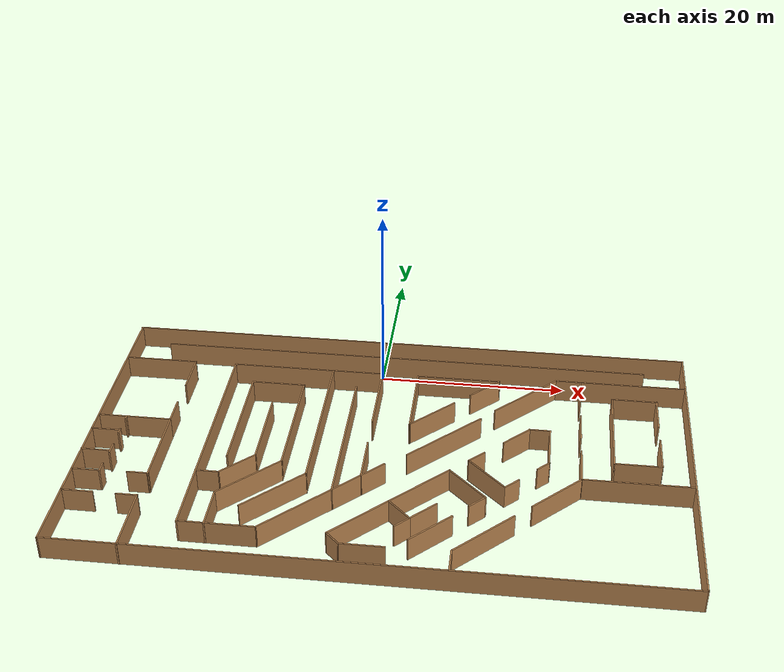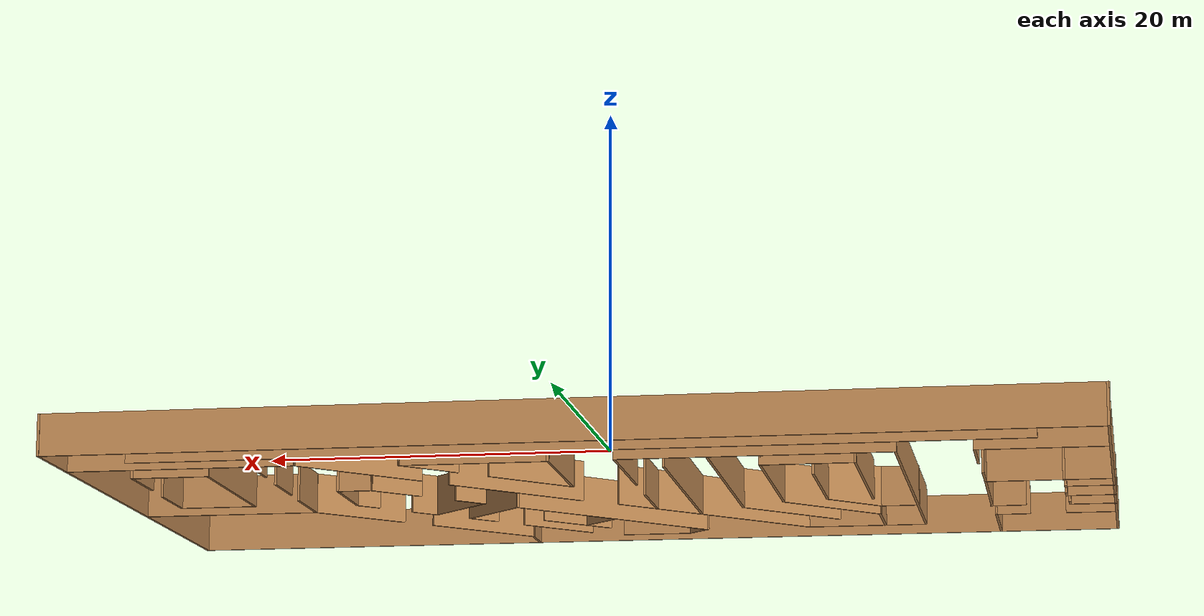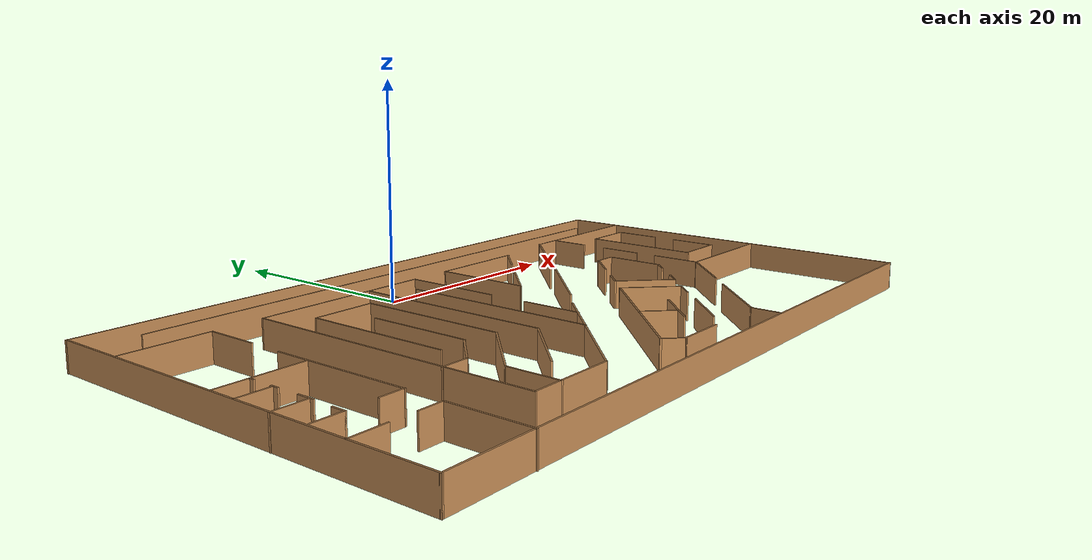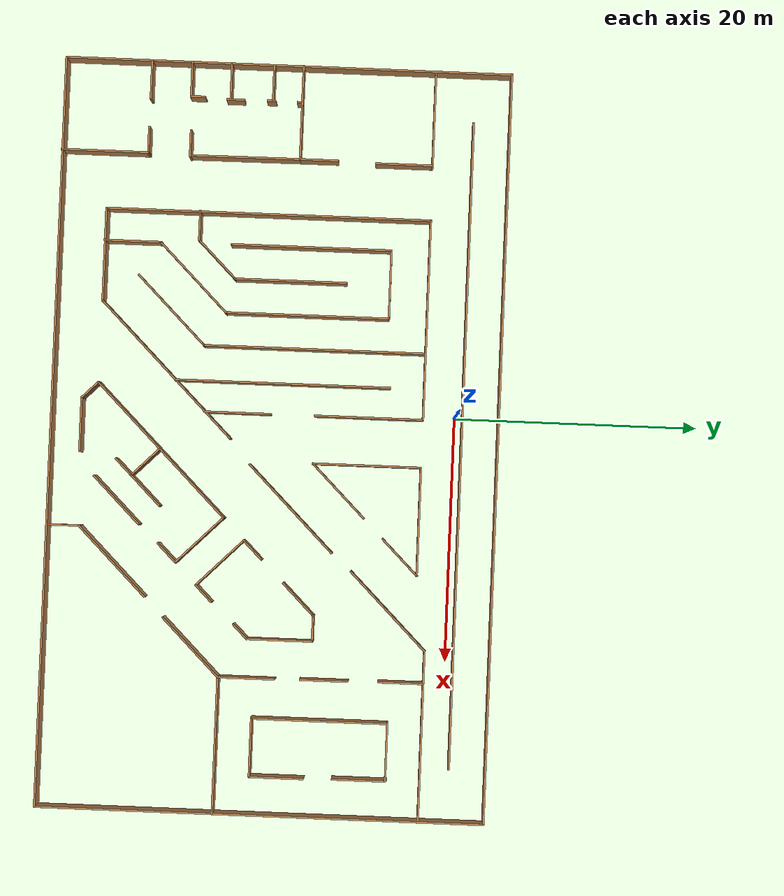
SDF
<?xml version='1.0'?>
<sdf version='1.6'>
  <model name='office_01'>
    <pose frame=''>2.30227 -14.7279 0 0 -0 0</pose>
    <link name='Wall_100'>
      <collision name='Wall_100_Collision'>
        <geometry>
          <box>
            <size>16.5 0.15 2.5</size>
          </box>
        </geometry>
        <pose frame=''>0 0 1.25 0 -0 0</pose>
      </collision>
      <visual name='Wall_100_Visual'>
        <pose frame=''>0 0 1.25 0 -0 0</pose>
        <geometry>
          <box>
            <size>16.5 0.15 2.5</size>
          </box>
        </geometry>
        <material>
          <script>
            <uri>file://media/materials/scripts/gazebo.material</uri>
            <name>Gazebo/Wood</name>
          </script>
          <ambient>1 1 1 1</ambient>
        </material>
      </visual>
      <pose frame=''>-10.2288 12.1289 0 0 -0 0</pose>
    </link>
    <link name='Wall_101'>
      <collision name='Wall_101_Collision'>
        <geometry>
          <box>
            <size>9 0.15 2.5</size>
          </box>
        </geometry>
        <pose frame=''>0 0 1.25 0 -0 0</pose>
      </collision>
      <visual name='Wall_101_Visual'>
        <pose frame=''>0 0 1.25 0 -0 0</pose>
        <geometry>
          <box>
            <size>9 0.15 2.5</size>
          </box>
        </geometry>
        <material>
          <script>
            <uri>file://media/materials/scripts/gazebo.material</uri>
            <name>Gazebo/Wood</name>
          </script>
          <ambient>1 1 1 1</ambient>
        </material>
      </visual>
      <pose frame=''>-2.05381 7.70387 0 0 0 -1.5708</pose>
    </link>
    <link name='Wall_103'>
      <collision name='Wall_103_Collision'>
        <geometry>
          <box>
            <size>5.5 0.15 2.5</size>
          </box>
        </geometry>
        <pose frame=''>0 0 1.25 0 -0 0</pose>
      </collision>
      <visual name='Wall_103_Visual'>
        <pose frame=''>0 0 1.25 0 -0 0</pose>
        <geometry>
          <box>
            <size>5.5 0.15 2.5</size>
          </box>
        </geometry>
        <material>
          <script>
            <uri>file://media/materials/scripts/gazebo.material</uri>
            <name>Gazebo/Wood</name>
          </script>
          <ambient>1 1 1 1</ambient>
        </material>
      </visual>
      <pose frame=''>-2.03751 -3.05835 0 0 -0 1.5708</pose>
    </link>
    <link name='Wall_108'>
      <collision name='Wall_108_Collision'>
        <geometry>
          <box>
            <size>17.75 0.15 2.5</size>
          </box>
        </geometry>
        <pose frame=''>0 0 1.25 0 -0 0</pose>
      </collision>
      <visual name='Wall_108_Visual'>
        <pose frame=''>0 0 1.25 0 -0 0</pose>
        <geometry>
          <box>
            <size>17.75 0.15 2.5</size>
          </box>
        </geometry>
        <material>
          <script>
            <uri>file://media/materials/scripts/gazebo.material</uri>
            <name>Gazebo/Wood</name>
          </script>
          <ambient>1 1 1 1</ambient>
        </material>
      </visual>
      <pose frame=''>-4.56512 0.520056 0 0 -0 1.5708</pose>
    </link>
    <link name='Wall_110'>
      <collision name='Wall_110_Collision'>
        <geometry>
          <box>
            <size>18.25 0.15 2.5</size>
          </box>
        </geometry>
        <pose frame=''>0 0 1.25 0 -0 0</pose>
      </collision>
      <visual name='Wall_110_Visual'>
        <pose frame=''>0 0 1.25 0 -0 0</pose>
        <geometry>
          <box>
            <size>18.25 0.15 2.5</size>
          </box>
        </geometry>
        <material>
          <script>
            <uri>file://media/materials/scripts/gazebo.material</uri>
            <name>Gazebo/Wood</name>
          </script>
          <ambient>1 1 1 1</ambient>
        </material>
      </visual>
      <pose frame=''>-7.47066 3.00884 0 0 0 -1.5708</pose>
    </link>
    <link name='Wall_114'>
      <collision name='Wall_114_Collision'>
        <geometry>
          <box>
            <size>8 0.15 2.5</size>
          </box>
        </geometry>
        <pose frame=''>0 0 1.25 0 -0 0</pose>
      </collision>
      <visual name='Wall_114_Visual'>
        <pose frame=''>0 0 1.25 0 -0 0</pose>
        <geometry>
          <box>
            <size>8 0.15 2.5</size>
          </box>
        </geometry>
        <material>
          <script>
            <uri>file://media/materials/scripts/gazebo.material</uri>
            <name>Gazebo/Wood</name>
          </script>
          <ambient>1 1 1 1</ambient>
        </material>
      </visual>
      <pose frame=''>-10.2461 -8.81655 0 0 0 -2.35619</pose>
    </link>
    <link name='Wall_118'>
      <collision name='Wall_118_Collision'>
        <geometry>
          <box>
            <size>4.75 0.15 2.5</size>
          </box>
        </geometry>
        <pose frame=''>0 0 1.25 0 -0 0</pose>
      </collision>
      <visual name='Wall_118_Visual'>
        <pose frame=''>0 0 1.25 0 -0 0</pose>
        <geometry>
          <box>
            <size>4.75 0.15 2.5</size>
          </box>
        </geometry>
        <material>
          <script>
            <uri>file://media/materials/scripts/gazebo.material</uri>
            <name>Gazebo/Wood</name>
          </script>
          <ambient>1 1 1 1</ambient>
        </material>
      </visual>
      <pose frame=''>-15.7728 -12.1981 0 0 -0 1.5708</pose>
    </link>
    <link name='Wall_119'>
      <collision name='Wall_119_Collision'>
        <geometry>
          <box>
            <size>8 0.15 2.5</size>
          </box>
        </geometry>
        <pose frame=''>0 0 1.25 0 -0 0</pose>
      </collision>
      <visual name='Wall_119_Visual'>
        <pose frame=''>0 0 1.25 0 -0 0</pose>
        <geometry>
          <box>
            <size>8 0.15 2.5</size>
          </box>
        </geometry>
        <material>
          <script>
            <uri>file://media/materials/scripts/gazebo.material</uri>
            <name>Gazebo/Wood</name>
          </script>
          <ambient>1 1 1 1</ambient>
        </material>
      </visual>
      <pose frame=''>-12.9974 -7.12271 0 0 -0 0.785398</pose>
    </link>
    <link name='Wall_120'>
      <collision name='Wall_120_Collision'>
        <geometry>
          <box>
            <size>13.5 0.15 2.5</size>
          </box>
        </geometry>
        <pose frame=''>0 0 1.25 0 -0 0</pose>
      </collision>
      <visual name='Wall_120_Visual'>
        <pose frame=''>0 0 1.25 0 -0 0</pose>
        <geometry>
          <box>
            <size>13.5 0.15 2.5</size>
          </box>
        </geometry>
        <material>
          <script>
            <uri>file://media/materials/scripts/gazebo.material</uri>
            <name>Gazebo/Wood</name>
          </script>
          <ambient>1 1 1 1</ambient>
        </material>
      </visual>
      <pose frame=''>-10.2221 2.32769 0 0 -0 1.5708</pose>
    </link>
    <link name='Wall_121'>
      <collision name='Wall_121_Collision'>
        <geometry>
          <box>
            <size>5.75 0.15 2.5</size>
          </box>
        </geometry>
        <pose frame=''>0 0 1.25 0 -0 0</pose>
      </collision>
      <visual name='Wall_121_Visual'>
        <pose frame=''>0 0 1.25 0 -0 0</pose>
        <geometry>
          <box>
            <size>5.75 0.15 2.5</size>
          </box>
        </geometry>
        <material>
          <script>
            <uri>file://media/materials/scripts/gazebo.material</uri>
            <name>Gazebo/Wood</name>
          </script>
          <ambient>1 1 1 1</ambient>
        </material>
      </visual>
      <pose frame=''>-13.0221 9.00269 0 0 -0 3.14159</pose>
    </link>
    <link name='Wall_123'>
      <collision name='Wall_123_Collision'>
        <geometry>
          <box>
            <size>13.25 0.15 2.5</size>
          </box>
        </geometry>
        <pose frame=''>0 0 1.25 0 -0 0</pose>
      </collision>
      <visual name='Wall_123_Visual'>
        <pose frame=''>0 0 1.25 0 -0 0</pose>
        <geometry>
          <box>
            <size>13.25 0.15 2.5</size>
          </box>
        </geometry>
        <material>
          <script>
            <uri>file://media/materials/scripts/gazebo.material</uri>
            <name>Gazebo/Wood</name>
          </script>
          <ambient>1 1 1 1</ambient>
        </material>
      </visual>
      <pose frame=''>-15.8221 2.45269 0 0 0 -1.5708</pose>
    </link>
    <link name='Wall_125'>
      <collision name='Wall_125_Collision'>
        <geometry>
          <box>
            <size>2.5 0.15 2.5</size>
          </box>
        </geometry>
        <pose frame=''>0 0 1.25 0 -0 0</pose>
      </collision>
      <visual name='Wall_125_Visual'>
        <pose frame=''>0 0 1.25 0 -0 0</pose>
        <geometry>
          <box>
            <size>2.5 0.15 2.5</size>
          </box>
        </geometry>
        <material>
          <script>
            <uri>file://media/materials/scripts/gazebo.material</uri>
            <name>Gazebo/Wood</name>
          </script>
          <ambient>1 1 1 1</ambient>
        </material>
      </visual>
      <pose frame=''>-17.2648 -6.77806 0 0 -0 0</pose>
    </link>
    <link name='Wall_126'>
      <collision name='Wall_126_Collision'>
        <geometry>
          <box>
            <size>4.5 0.15 2.5</size>
          </box>
        </geometry>
        <pose frame=''>0 0 1.25 0 -0 0</pose>
      </collision>
      <visual name='Wall_126_Visual'>
        <pose frame=''>0 0 1.25 0 -0 0</pose>
        <geometry>
          <box>
            <size>4.5 0.15 2.5</size>
          </box>
        </geometry>
        <material>
          <script>
            <uri>file://media/materials/scripts/gazebo.material</uri>
            <name>Gazebo/Wood</name>
          </script>
          <ambient>1 1 1 1</ambient>
        </material>
      </visual>
      <pose frame=''>-14.5518 -5.2401 0 0 -0 0.785398</pose>
    </link>
    <link name='Wall_127'>
      <collision name='Wall_127_Collision'>
        <geometry>
          <box>
            <size>9.25 0.15 2.5</size>
          </box>
        </geometry>
        <pose frame=''>0 0 1.25 0 -0 0</pose>
      </collision>
      <visual name='Wall_127_Visual'>
        <pose frame=''>0 0 1.25 0 -0 0</pose>
        <geometry>
          <box>
            <size>9.25 0.15 2.5</size>
          </box>
        </geometry>
        <material>
          <script>
            <uri>file://media/materials/scripts/gazebo.material</uri>
            <name>Gazebo/Wood</name>
          </script>
          <ambient>1 1 1 1</ambient>
        </material>
      </visual>
      <pose frame=''>-13.0138 0.847851 0 0 -0 1.5708</pose>
    </link>
    <link name='Wall_129'>
      <collision name='Wall_129_Collision'>
        <geometry>
          <box>
            <size>9 0.15 2.5</size>
          </box>
        </geometry>
        <pose frame=''>0 0 1.25 0 -0 0</pose>
      </collision>
      <visual name='Wall_129_Visual'>
        <pose frame=''>0 0 1.25 0 -0 0</pose>
        <geometry>
          <box>
            <size>9 0.15 2.5</size>
          </box>
        </geometry>
        <material>
          <script>
            <uri>file://media/materials/scripts/gazebo.material</uri>
            <name>Gazebo/Wood</name>
          </script>
          <ambient>1 1 1 1</ambient>
        </material>
      </visual>
      <pose frame=''>1.86067 7.68832 0 0 0 -1.5708</pose>
    </link>
    <link name='Wall_130'>
      <collision name='Wall_130_Collision'>
        <geometry>
          <box>
            <size>6.25 0.15 2.5</size>
          </box>
        </geometry>
        <pose frame=''>0 0 1.25 0 -0 0</pose>
      </collision>
      <visual name='Wall_130_Visual'>
        <pose frame=''>0 0 1.25 0 -0 0</pose>
        <geometry>
          <box>
            <size>6.25 0.15 2.5</size>
          </box>
        </geometry>
        <material>
          <script>
            <uri>file://media/materials/scripts/gazebo.material</uri>
            <name>Gazebo/Wood</name>
          </script>
          <ambient>1 1 1 1</ambient>
        </material>
      </visual>
      <pose frame=''>4.01734 5.42 0 0 -0 0.785398</pose>
    </link>
    <link name='Wall_132'>
      <collision name='Wall_132_Collision'>
        <geometry>
          <box>
            <size>9 0.15 2.5</size>
          </box>
        </geometry>
        <pose frame=''>0 0 1.25 0 -0 0</pose>
      </collision>
      <visual name='Wall_132_Visual'>
        <pose frame=''>0 0 1.25 0 -0 0</pose>
        <geometry>
          <box>
            <size>9 0.15 2.5</size>
          </box>
        </geometry>
        <material>
          <script>
            <uri>file://media/materials/scripts/gazebo.material</uri>
            <name>Gazebo/Wood</name>
          </script>
          <ambient>1 1 1 1</ambient>
        </material>
      </visual>
      <pose frame=''>6.28567 12.1133 0 0 -0 0</pose>
    </link>
    <link name='Wall_134'>
      <collision name='Wall_134_Collision'>
        <geometry>
          <box>
            <size>4.25 0.15 2.5</size>
          </box>
        </geometry>
        <pose frame=''>0 0 1.25 0 -0 0</pose>
      </collision>
      <visual name='Wall_134_Visual'>
        <pose frame=''>0 0 1.25 0 -0 0</pose>
        <geometry>
          <box>
            <size>4.25 0.15 2.5</size>
          </box>
        </geometry>
        <material>
          <script>
            <uri>file://media/materials/scripts/gazebo.material</uri>
            <name>Gazebo/Wood</name>
          </script>
          <ambient>1 1 1 1</ambient>
        </material>
      </visual>
      <pose frame=''>9.2611 10.6638 0 0 0 -2.35619</pose>
    </link>
    <link name='Wall_138'>
      <collision name='Wall_138_Collision'>
        <geometry>
          <box>
            <size>53 0.15 2.5</size>
          </box>
        </geometry>
        <pose frame=''>0 0 1.25 0 -0 0</pose>
      </collision>
      <visual name='Wall_138_Visual'>
        <pose frame=''>0 0 1.25 0 -0 0</pose>
        <geometry>
          <box>
            <size>53 0.15 2.5</size>
          </box>
        </geometry>
        <material>
          <script>
            <uri>file://media/materials/scripts/gazebo.material</uri>
            <name>Gazebo/Wood</name>
          </script>
          <ambient>1 1 1 1</ambient>
        </material>
      </visual>
      <pose frame=''>-0.121445 15.337 0 0 -0 0</pose>
    </link>
    <link name='Wall_140'>
      <collision name='Wall_140_Collision'>
        <geometry>
          <box>
            <size>5.5 0.15 2.5</size>
          </box>
        </geometry>
        <pose frame=''>0 0 1.25 0 -0 0</pose>
      </collision>
      <visual name='Wall_140_Visual'>
        <pose frame=''>0 0 1.25 0 -0 0</pose>
        <geometry>
          <box>
            <size>5.5 0.15 2.5</size>
          </box>
        </geometry>
        <material>
          <script>
            <uri>file://media/materials/scripts/gazebo.material</uri>
            <name>Gazebo/Wood</name>
          </script>
          <ambient>1 1 1 1</ambient>
        </material>
      </visual>
      <pose frame=''>10.261 -4.00999 0 0 -0 2.35619</pose>
    </link>
    <link name='Wall_146'>
      <collision name='Wall_146_Collision'>
        <geometry>
          <box>
            <size>2 0.15 2.5</size>
          </box>
        </geometry>
        <pose frame=''>0 0 1.25 0 -0 0</pose>
      </collision>
      <visual name='Wall_146_Visual'>
        <pose frame=''>0 0 1.25 0 -0 0</pose>
        <geometry>
          <box>
            <size>2 0.15 2.5</size>
          </box>
        </geometry>
        <material>
          <script>
            <uri>file://media/materials/scripts/gazebo.material</uri>
            <name>Gazebo/Wood</name>
          </script>
          <ambient>1 1 1 1</ambient>
        </material>
      </visual>
      <pose frame=''>12.8066 -5.24743 0 0 -0 0.785398</pose>
    </link>
    <link name='Wall_148'>
      <collision name='Wall_148_Collision'>
        <geometry>
          <box>
            <size>2.25 0.15 2.5</size>
          </box>
        </geometry>
        <pose frame=''>0 0 1.25 0 -0 0</pose>
      </collision>
      <visual name='Wall_148_Visual'>
        <pose frame=''>0 0 1.25 0 -0 0</pose>
        <geometry>
          <box>
            <size>2.25 0.15 2.5</size>
          </box>
        </geometry>
        <material>
          <script>
            <uri>file://media/materials/scripts/gazebo.material</uri>
            <name>Gazebo/Wood</name>
          </script>
          <ambient>1 1 1 1</ambient>
        </material>
      </visual>
      <pose frame=''>15.3238 3.78586 0 0 -0 0</pose>
    </link>
    <link name='Wall_149'>
      <collision name='Wall_149_Collision'>
        <geometry>
          <box>
            <size>5.5 0.15 2.5</size>
          </box>
        </geometry>
        <pose frame=''>0 0 1.25 0 -0 0</pose>
      </collision>
      <visual name='Wall_149_Visual'>
        <pose frame=''>0 0 1.25 0 -0 0</pose>
        <geometry>
          <box>
            <size>5.5 0.15 2.5</size>
          </box>
        </geometry>
        <material>
          <script>
            <uri>file://media/materials/scripts/gazebo.material</uri>
            <name>Gazebo/Wood</name>
          </script>
          <ambient>1 1 1 1</ambient>
        </material>
      </visual>
      <pose frame=''>16.3738 1.11086 0 0 0 -1.5708</pose>
    </link>
    <link name='Wall_151'>
      <collision name='Wall_151_Collision'>
        <geometry>
          <box>
            <size>2.25 0.15 2.5</size>
          </box>
        </geometry>
        <pose frame=''>0 0 1.25 0 -0 0</pose>
      </collision>
      <visual name='Wall_151_Visual'>
        <pose frame=''>0 0 1.25 0 -0 0</pose>
        <geometry>
          <box>
            <size>2.25 0.15 2.5</size>
          </box>
        </geometry>
        <material>
          <script>
            <uri>file://media/materials/scripts/gazebo.material</uri>
            <name>Gazebo/Wood</name>
          </script>
          <ambient>1 1 1 1</ambient>
        </material>
      </visual>
      <pose frame=''>9.11194 -1.37602 0 0 -0 0.785398</pose>
    </link>
    <link name='Wall_153'>
      <collision name='Wall_153_Collision'>
        <geometry>
          <box>
            <size>3.75 0.15 2.5</size>
          </box>
        </geometry>
        <pose frame=''>0 0 1.25 0 -0 0</pose>
      </collision>
      <visual name='Wall_153_Visual'>
        <pose frame=''>0 0 1.25 0 -0 0</pose>
        <geometry>
          <box>
            <size>3.75 0.15 2.5</size>
          </box>
        </geometry>
        <material>
          <script>
            <uri>file://media/materials/scripts/gazebo.material</uri>
            <name>Gazebo/Wood</name>
          </script>
          <ambient>1 1 1 1</ambient>
        </material>
      </visual>
      <pose frame=''>13.001 2.51307 0 0 0 -2.35619</pose>
    </link>
    <link name='Wall_155'>
      <collision name='Wall_155_Collision'>
        <geometry>
          <box>
            <size>1.75 0.15 2.5</size>
          </box>
        </geometry>
        <pose frame=''>0 0 1.25 0 -0 0</pose>
      </collision>
      <visual name='Wall_155_Visual'>
        <pose frame=''>0 0 1.25 0 -0 0</pose>
        <geometry>
          <box>
            <size>1.75 0.15 2.5</size>
          </box>
        </geometry>
        <material>
          <script>
            <uri>file://media/materials/scripts/gazebo.material</uri>
            <name>Gazebo/Wood</name>
          </script>
          <ambient>1 1 1 1</ambient>
        </material>
      </visual>
      <pose frame=''>15.8081 -2.12983 0 0 0 -2.35619</pose>
    </link>
    <link name='Wall_160'>
      <collision name='Wall_160_Collision'>
        <geometry>
          <box>
            <size>2.25 0.15 2.5</size>
          </box>
        </geometry>
        <pose frame=''>0 0 1.25 0 -0 0</pose>
      </collision>
      <visual name='Wall_160_Visual'>
        <pose frame=''>0 0 1.25 0 -0 0</pose>
        <geometry>
          <box>
            <size>2.25 0.15 2.5</size>
          </box>
        </geometry>
        <material>
          <script>
            <uri>file://media/materials/scripts/gazebo.material</uri>
            <name>Gazebo/Wood</name>
          </script>
          <ambient>1 1 1 1</ambient>
        </material>
      </visual>
      <pose frame=''>-24.0015 -7.81907 0 0 -0 3.14159</pose>
    </link>
    <link name='Wall_162'>
      <collision name='Wall_162_Collision'>
        <geometry>
          <box>
            <size>2.25 0.15 2.5</size>
          </box>
        </geometry>
        <pose frame=''>0 0 1.25 0 -0 0</pose>
      </collision>
      <visual name='Wall_162_Visual'>
        <pose frame=''>0 0 1.25 0 -0 0</pose>
        <geometry>
          <box>
            <size>2.25 0.15 2.5</size>
          </box>
        </geometry>
        <material>
          <script>
            <uri>file://media/materials/scripts/gazebo.material</uri>
            <name>Gazebo/Wood</name>
          </script>
          <ambient>1 1 1 1</ambient>
        </material>
      </visual>
      <pose frame=''>-24.1424 -11.2489 0 0 -0 3.14159</pose>
    </link>
    <link name='Wall_164'>
      <collision name='Wall_164_Collision'>
        <geometry>
          <box>
            <size>2.89821 0.15 2.5</size>
          </box>
        </geometry>
        <pose frame=''>0 0 1.25 0 -0 0</pose>
      </collision>
      <visual name='Wall_164_Visual'>
        <pose frame=''>0 0 1.25 0 -0 0</pose>
        <geometry>
          <box>
            <size>2.89821 0.15 2.5</size>
          </box>
        </geometry>
        <material>
          <script>
            <uri>file://media/materials/scripts/gazebo.material</uri>
            <name>Gazebo/Wood</name>
          </script>
          <ambient>1 1 1 1</ambient>
        </material>
      </visual>
      <pose frame=''>-29.2978 -7.92401 0 0 -0 0</pose>
    </link>
    <link name='Wall_166'>
      <collision name='Wall_166_Collision'>
        <geometry>
          <box>
            <size>3.25 0.15 2.5</size>
          </box>
        </geometry>
        <pose frame=''>0 0 1.25 0 -0 0</pose>
      </collision>
      <visual name='Wall_166_Visual'>
        <pose frame=''>0 0 1.25 0 -0 0</pose>
        <geometry>
          <box>
            <size>3.25 0.15 2.5</size>
          </box>
        </geometry>
        <material>
          <script>
            <uri>file://media/materials/scripts/gazebo.material</uri>
            <name>Gazebo/Wood</name>
          </script>
          <ambient>1 1 1 1</ambient>
        </material>
      </visual>
      <pose frame=''>-29.1219 -11.2272 0 0 -0 0</pose>
    </link>
    <link name='Wall_168'>
      <collision name='Wall_168_Collision'>
        <geometry>
          <box>
            <size>3 0.15 2.5</size>
          </box>
        </geometry>
        <pose frame=''>0 0 1.25 0 -0 0</pose>
      </collision>
      <visual name='Wall_168_Visual'>
        <pose frame=''>0 0 1.25 0 -0 0</pose>
        <geometry>
          <box>
            <size>3 0.15 2.5</size>
          </box>
        </geometry>
        <material>
          <script>
            <uri>file://media/materials/scripts/gazebo.material</uri>
            <name>Gazebo/Wood</name>
          </script>
          <ambient>1 1 1 1</ambient>
        </material>
      </visual>
      <pose frame=''>-29.2258 -1.19675 0 0 -0 0</pose>
    </link>
    <link name='Wall_170'>
      <collision name='Wall_170_Collision'>
        <geometry>
          <box>
            <size>3 0.15 2.5</size>
          </box>
        </geometry>
        <pose frame=''>0 0 1.25 0 -0 0</pose>
      </collision>
      <visual name='Wall_170_Visual'>
        <pose frame=''>0 0 1.25 0 -0 0</pose>
        <geometry>
          <box>
            <size>3 0.15 2.5</size>
          </box>
        </geometry>
        <material>
          <script>
            <uri>file://media/materials/scripts/gazebo.material</uri>
            <name>Gazebo/Wood</name>
          </script>
          <ambient>1 1 1 1</ambient>
        </material>
      </visual>
      <pose frame=''>-29.2793 -4.67441 0 0 -0 0</pose>
    </link>
    <link name='Wall_172'>
      <collision name='Wall_172_Collision'>
        <geometry>
          <box>
            <size>0.5 0.15 2.5</size>
          </box>
        </geometry>
        <pose frame=''>0 0 1.25 0 -0 0</pose>
      </collision>
      <visual name='Wall_172_Visual'>
        <pose frame=''>0 0 1.25 0 -0 0</pose>
        <geometry>
          <box>
            <size>0.5 0.15 2.5</size>
          </box>
        </geometry>
        <material>
          <script>
            <uri>file://media/materials/scripts/gazebo.material</uri>
            <name>Gazebo/Wood</name>
          </script>
          <ambient>1 1 1 1</ambient>
        </material>
      </visual>
      <pose frame=''>-27.7082 1.03587 0 0 0 -1.5708</pose>
    </link>
    <link name='Wall_181'>
      <collision name='Wall_181_Collision'>
        <geometry>
          <box>
            <size>0.75 0.15 2.5</size>
          </box>
        </geometry>
        <pose frame=''>0 0 1.25 0 -0 0</pose>
      </collision>
      <visual name='Wall_181_Visual'>
        <pose frame=''>0 0 1.25 0 -0 0</pose>
        <geometry>
          <box>
            <size>0.75 0.15 2.5</size>
          </box>
        </geometry>
        <material>
          <script>
            <uri>file://media/materials/scripts/gazebo.material</uri>
            <name>Gazebo/Wood</name>
          </script>
          <ambient>1 1 1 1</ambient>
        </material>
      </visual>
      <pose frame=''>-27.7432 -1.31814 0 0 0 -1.5708</pose>
    </link>
    <link name='Wall_183'>
      <collision name='Wall_183_Collision'>
        <geometry>
          <box>
            <size>1.5 0.15 2.5</size>
          </box>
        </geometry>
        <pose frame=''>0 0 1.25 0 -0 0</pose>
      </collision>
      <visual name='Wall_183_Visual'>
        <pose frame=''>0 0 1.25 0 -0 0</pose>
        <geometry>
          <box>
            <size>1.5 0.15 2.5</size>
          </box>
        </geometry>
        <material>
          <script>
            <uri>file://media/materials/scripts/gazebo.material</uri>
            <name>Gazebo/Wood</name>
          </script>
          <ambient>1 1 1 1</ambient>
        </material>
      </visual>
      <pose frame=''>-27.7151 -4.25577 0 0 0 -1.5708</pose>
    </link>
    <link name='Wall_186'>
      <collision name='Wall_186_Collision'>
        <geometry>
          <box>
            <size>1.25 0.15 2.5</size>
          </box>
        </geometry>
        <pose frame=''>0 0 1.25 0 -0 0</pose>
      </collision>
      <visual name='Wall_186_Visual'>
        <pose frame=''>0 0 1.25 0 -0 0</pose>
        <geometry>
          <box>
            <size>1.25 0.15 2.5</size>
          </box>
        </geometry>
        <material>
          <script>
            <uri>file://media/materials/scripts/gazebo.material</uri>
            <name>Gazebo/Wood</name>
          </script>
          <ambient>1 1 1 1</ambient>
        </material>
      </visual>
      <pose frame=''>-27.8533 -7.37401 0 0 -0 1.5708</pose>
    </link>
    <link name='Wall_27'>
      <collision name='Wall_27_Collision'>
        <geometry>
          <box>
            <size>36.7751 0.15 2.5</size>
          </box>
        </geometry>
        <pose frame=''>0 0 1.25 0 -0 0</pose>
      </collision>
      <visual name='Wall_27_Visual'>
        <pose frame=''>0 0 1.25 0 -0 0</pose>
        <geometry>
          <box>
            <size>36.7751 0.15 2.5</size>
          </box>
        </geometry>
        <material>
          <script>
            <uri>file://media/materials/scripts/gazebo.material</uri>
            <name>Gazebo/Wood</name>
          </script>
          <ambient>1 1 1 1</ambient>
        </material>
      </visual>
      <pose frame=''>-30.6656 0.036311 0 0 0 -1.57188</pose>
    </link>
    <link name='Wall_28'>
      <collision name='Wall_28_Collision'>
        <geometry>
          <box>
            <size>61.5 0.15 2.5</size>
          </box>
        </geometry>
        <pose frame=''>0 0 1.25 0 -0 0</pose>
      </collision>
      <visual name='Wall_28_Visual'>
        <pose frame=''>0 0 1.25 0 -0 0</pose>
        <geometry>
          <box>
            <size>61.5 0.15 2.5</size>
          </box>
        </geometry>
        <material>
          <script>
            <uri>file://media/materials/scripts/gazebo.material</uri>
            <name>Gazebo/Wood</name>
          </script>
          <ambient>1 1 1 1</ambient>
        </material>
      </visual>
      <pose frame=''>-0.010385 -18.2762 0 0 -0 0</pose>
    </link>
    <link name='Wall_29'>
      <collision name='Wall_29_Collision'>
        <geometry>
          <box>
            <size>36.7751 0.15 2.5</size>
          </box>
        </geometry>
        <pose frame=''>0 0 1.25 0 -0 0</pose>
      </collision>
      <visual name='Wall_29_Visual'>
        <pose frame=''>0 0 1.25 0 -0 0</pose>
        <geometry>
          <box>
            <size>36.7751 0.15 2.5</size>
          </box>
        </geometry>
        <material>
          <script>
            <uri>file://media/materials/scripts/gazebo.material</uri>
            <name>Gazebo/Wood</name>
          </script>
          <ambient>1 1 1 1</ambient>
        </material>
      </visual>
      <pose frame=''>30.6844 0.036311 0 0 -0 1.56971</pose>
    </link>
    <link name='Wall_30'>
      <collision name='Wall_30_Collision'>
        <geometry>
          <box>
            <size>61.5 0.15 2.5</size>
          </box>
        </geometry>
        <pose frame=''>0 0 1.25 0 -0 0</pose>
      </collision>
      <visual name='Wall_30_Visual'>
        <pose frame=''>0 0 1.25 0 -0 0</pose>
        <geometry>
          <box>
            <size>61.5 0.15 2.5</size>
          </box>
        </geometry>
        <material>
          <script>
            <uri>file://media/materials/scripts/gazebo.material</uri>
            <name>Gazebo/Wood</name>
          </script>
          <ambient>1 1 1 1</ambient>
        </material>
      </visual>
      <pose frame=''>-0.024239 18.3221 0 0 -0 3.14159</pose>
    </link>
    <link name='Wall_32'>
      <collision name='Wall_32_Collision'>
        <geometry>
          <box>
            <size>7.25 0.15 2.5</size>
          </box>
        </geometry>
        <pose frame=''>0 0 1.25 0 -0 0</pose>
      </collision>
      <visual name='Wall_32_Visual'>
        <pose frame=''>0 0 1.25 0 -0 0</pose>
        <geometry>
          <box>
            <size>7.25 0.15 2.5</size>
          </box>
        </geometry>
        <material>
          <script>
            <uri>file://media/materials/scripts/gazebo.material</uri>
            <name>Gazebo/Wood</name>
          </script>
          <ambient>1 1 1 1</ambient>
        </material>
      </visual>
      <pose frame=''>-23.0924 -14.7989 0 0 -0 1.5708</pose>
    </link>
    <link name='Wall_34'>
      <collision name='Wall_34_Collision'>
        <geometry>
          <box>
            <size>9.17971 0.15 2.5</size>
          </box>
        </geometry>
        <pose frame=''>0 0 1.25 0 -0 0</pose>
      </collision>
      <visual name='Wall_34_Visual'>
        <pose frame=''>0 0 1.25 0 -0 0</pose>
        <geometry>
          <box>
            <size>9.17971 0.15 2.5</size>
          </box>
        </geometry>
        <material>
          <script>
            <uri>file://media/materials/scripts/gazebo.material</uri>
            <name>Gazebo/Wood</name>
          </script>
          <ambient>1 1 1 1</ambient>
        </material>
      </visual>
      <pose frame=''>-23.0043 -3.30425 0 0 -0 1.57469</pose>
    </link>
    <link name='Wall_36'>
      <collision name='Wall_36_Collision'>
        <geometry>
          <box>
            <size>7.75 0.15 2.5</size>
          </box>
        </geometry>
        <pose frame=''>0 0 1.25 0 -0 0</pose>
      </collision>
      <visual name='Wall_36_Visual'>
        <pose frame=''>0 0 1.25 0 -0 0</pose>
        <geometry>
          <box>
            <size>7.75 0.15 2.5</size>
          </box>
        </geometry>
        <material>
          <script>
            <uri>file://media/materials/scripts/gazebo.material</uri>
            <name>Gazebo/Wood</name>
          </script>
          <ambient>1 1 1 1</ambient>
        </material>
      </visual>
      <pose frame=''>-26.8219 1.21057 0 0 -0 3.14159</pose>
    </link>
    <link name='Wall_38'>
      <collision name='Wall_38_Collision'>
        <geometry>
          <box>
            <size>3.25 0.15 2.5</size>
          </box>
        </geometry>
        <pose frame=''>0 0 1.25 0 -0 0</pose>
      </collision>
      <visual name='Wall_38_Visual'>
        <pose frame=''>0 0 1.25 0 -0 0</pose>
        <geometry>
          <box>
            <size>3.25 0.15 2.5</size>
          </box>
        </geometry>
        <material>
          <script>
            <uri>file://media/materials/scripts/gazebo.material</uri>
            <name>Gazebo/Wood</name>
          </script>
          <ambient>1 1 1 1</ambient>
        </material>
      </visual>
      <pose frame=''>-23.0219 2.76057 0 0 -0 1.5708</pose>
    </link>
    <link name='Wall_40'>
      <collision name='Wall_40_Collision'>
        <geometry>
          <box>
            <size>4.75 0.15 2.5</size>
          </box>
        </geometry>
        <pose frame=''>0 0 1.25 0 -0 0</pose>
      </collision>
      <visual name='Wall_40_Visual'>
        <pose frame=''>0 0 1.25 0 -0 0</pose>
        <geometry>
          <box>
            <size>4.75 0.15 2.5</size>
          </box>
        </geometry>
        <material>
          <script>
            <uri>file://media/materials/scripts/gazebo.material</uri>
            <name>Gazebo/Wood</name>
          </script>
          <ambient>1 1 1 1</ambient>
        </material>
      </visual>
      <pose frame=''>-22.9223 9.79187 0 0 -0 1.5708</pose>
    </link>
    <link name='Wall_43'>
      <collision name='Wall_43_Collision'>
        <geometry>
          <box>
            <size>7.75 0.15 2.5</size>
          </box>
        </geometry>
        <pose frame=''>0 0 1.25 0 -0 0</pose>
      </collision>
      <visual name='Wall_43_Visual'>
        <pose frame=''>0 0 1.25 0 -0 0</pose>
        <geometry>
          <box>
            <size>7.75 0.15 2.5</size>
          </box>
        </geometry>
        <material>
          <script>
            <uri>file://media/materials/scripts/gazebo.material</uri>
            <name>Gazebo/Wood</name>
          </script>
          <ambient>1 1 1 1</ambient>
        </material>
      </visual>
      <pose frame=''>-26.7223 12.0919 0 0 -0 3.14159</pose>
    </link>
    <link name='Wall_45'>
      <collision name='Wall_45_Collision'>
        <geometry>
          <box>
            <size>26.75 0.15 2.5</size>
          </box>
        </geometry>
        <pose frame=''>0 0 1.25 0 -0 0</pose>
      </collision>
      <visual name='Wall_45_Visual'>
        <pose frame=''>0 0 1.25 0 -0 0</pose>
        <geometry>
          <box>
            <size>26.75 0.15 2.5</size>
          </box>
        </geometry>
        <material>
          <script>
            <uri>file://media/materials/scripts/gazebo.material</uri>
            <name>Gazebo/Wood</name>
          </script>
          <ambient>1 1 1 1</ambient>
        </material>
      </visual>
      <pose frame=''>-18.4038 -1.17113 0 0 0 -1.5708</pose>
    </link>
    <link name='Wall_46'>
      <collision name='Wall_46_Collision'>
        <geometry>
          <box>
            <size>7.75 0.15 2.5</size>
          </box>
        </geometry>
        <pose frame=''>0 0 1.25 0 -0 0</pose>
      </collision>
      <visual name='Wall_46_Visual'>
        <pose frame=''>0 0 1.25 0 -0 0</pose>
        <geometry>
          <box>
            <size>7.75 0.15 2.5</size>
          </box>
        </geometry>
        <material>
          <script>
            <uri>file://media/materials/scripts/gazebo.material</uri>
            <name>Gazebo/Wood</name>
          </script>
          <ambient>1 1 1 1</ambient>
        </material>
      </visual>
      <pose frame=''>-14.6038 -14.4711 0 0 -0 0</pose>
    </link>
    <link name='Wall_47'>
      <collision name='Wall_47_Collision'>
        <geometry>
          <box>
            <size>15.5 0.15 2.5</size>
          </box>
        </geometry>
        <pose frame=''>0 0 1.25 0 -0 0</pose>
      </collision>
      <visual name='Wall_47_Visual'>
        <pose frame=''>0 0 1.25 0 -0 0</pose>
        <geometry>
          <box>
            <size>15.5 0.15 2.5</size>
          </box>
        </geometry>
        <material>
          <script>
            <uri>file://media/materials/scripts/gazebo.material</uri>
            <name>Gazebo/Wood</name>
          </script>
          <ambient>1 1 1 1</ambient>
        </material>
      </visual>
      <pose frame=''>-5.37677 -9.04408 0 0 -0 0.785398</pose>
    </link>
    <link name='Wall_50'>
      <collision name='Wall_50_Collision'>
        <geometry>
          <box>
            <size>10 0.15 2.5</size>
          </box>
        </geometry>
        <pose frame=''>0 0 1.25 0 -0 0</pose>
      </collision>
      <visual name='Wall_50_Visual'>
        <pose frame=''>0 0 1.25 0 -0 0</pose>
        <geometry>
          <box>
            <size>10 0.15 2.5</size>
          </box>
        </geometry>
        <material>
          <script>
            <uri>file://media/materials/scripts/gazebo.material</uri>
            <name>Gazebo/Wood</name>
          </script>
          <ambient>1 1 1 1</ambient>
        </material>
      </visual>
      <pose frame=''>5.62549 1.5898 0 0 -0 0.785398</pose>
    </link>
    <link name='Wall_52'>
      <collision name='Wall_52_Collision'>
        <geometry>
          <box>
            <size>9 0.15 2.5</size>
          </box>
        </geometry>
        <pose frame=''>0 0 1.25 0 -0 0</pose>
      </collision>
      <visual name='Wall_52_Visual'>
        <pose frame=''>0 0 1.25 0 -0 0</pose>
        <geometry>
          <box>
            <size>9 0.15 2.5</size>
          </box>
        </geometry>
        <material>
          <script>
            <uri>file://media/materials/scripts/gazebo.material</uri>
            <name>Gazebo/Wood</name>
          </script>
          <ambient>1 1 1 1</ambient>
        </material>
      </visual>
      <pose frame=''>13.6893 9.85333 0 0 -0 0.785398</pose>
    </link>
    <link name='Wall_53'>
      <collision name='Wall_53_Collision'>
        <geometry>
          <box>
            <size>14 0.15 2.5</size>
          </box>
        </geometry>
        <pose frame=''>0 0 1.25 0 -0 0</pose>
      </collision>
      <visual name='Wall_53_Visual'>
        <pose frame=''>0 0 1.25 0 -0 0</pose>
        <geometry>
          <box>
            <size>14 0.15 2.5</size>
          </box>
        </geometry>
        <material>
          <script>
            <uri>file://media/materials/scripts/gazebo.material</uri>
            <name>Gazebo/Wood</name>
          </script>
          <ambient>1 1 1 1</ambient>
        </material>
      </visual>
      <pose frame=''>23.7433 12.9823 0 0 -0 0</pose>
    </link>
    <link name='Wall_56'>
      <collision name='Wall_56_Collision'>
        <geometry>
          <box>
            <size>15.25 0.15 2.5</size>
          </box>
        </geometry>
        <pose frame=''>0 0 1.25 0 -0 0</pose>
      </collision>
      <visual name='Wall_56_Visual'>
        <pose frame=''>0 0 1.25 0 -0 0</pose>
        <geometry>
          <box>
            <size>15.25 0.15 2.5</size>
          </box>
        </geometry>
        <material>
          <script>
            <uri>file://media/materials/scripts/gazebo.material</uri>
            <name>Gazebo/Wood</name>
          </script>
          <ambient>1 1 1 1</ambient>
        </material>
      </visual>
      <pose frame=''>1.23659 -9.19452 0 0 -0 0.785398</pose>
    </link>
    <link name='Wall_58'>
      <collision name='Wall_58_Collision'>
        <geometry>
          <box>
            <size>5.5 0.15 2.5</size>
          </box>
        </geometry>
        <pose frame=''>0 0 1.25 0 -0 0</pose>
      </collision>
      <visual name='Wall_58_Visual'>
        <pose frame=''>0 0 1.25 0 -0 0</pose>
        <geometry>
          <box>
            <size>5.5 0.15 2.5</size>
          </box>
        </geometry>
        <material>
          <script>
            <uri>file://media/materials/scripts/gazebo.material</uri>
            <name>Gazebo/Wood</name>
          </script>
          <ambient>1 1 1 1</ambient>
        </material>
      </visual>
      <pose frame=''>8.46675 -5.74737 0 0 0 -0.785398</pose>
    </link>
    <link name='Wall_59'>
      <collision name='Wall_59_Collision'>
        <geometry>
          <box>
            <size>2.25 0.15 2.5</size>
          </box>
        </geometry>
        <pose frame=''>0 0 1.25 0 -0 0</pose>
      </collision>
      <visual name='Wall_59_Visual'>
        <pose frame=''>0 0 1.25 0 -0 0</pose>
        <geometry>
          <box>
            <size>2.25 0.15 2.5</size>
          </box>
        </geometry>
        <material>
          <script>
            <uri>file://media/materials/scripts/gazebo.material</uri>
            <name>Gazebo/Wood</name>
          </script>
          <ambient>1 1 1 1</ambient>
        </material>
      </visual>
      <pose frame=''>9.6158 -8.38135 0 0 0 -2.35619</pose>
    </link>
    <link name='Wall_61'>
      <collision name='Wall_61_Collision'>
        <geometry>
          <box>
            <size>2 0.15 2.5</size>
          </box>
        </geometry>
        <pose frame=''>0 0 1.25 0 -0 0</pose>
      </collision>
      <visual name='Wall_61_Visual'>
        <pose frame=''>0 0 1.25 0 -0 0</pose>
        <geometry>
          <box>
            <size>2 0.15 2.5</size>
          </box>
        </geometry>
        <material>
          <script>
            <uri>file://media/materials/scripts/gazebo.material</uri>
            <name>Gazebo/Wood</name>
          </script>
          <ambient>1 1 1 1</ambient>
        </material>
      </visual>
      <pose frame=''>-3.448 -15.1872 0 0 0 -0.785398</pose>
    </link>
    <link name='Wall_63'>
      <collision name='Wall_63_Collision'>
        <geometry>
          <box>
            <size>4.5 0.15 2.5</size>
          </box>
        </geometry>
        <pose frame=''>0 0 1.25 0 -0 0</pose>
      </collision>
      <visual name='Wall_63_Visual'>
        <pose frame=''>0 0 1.25 0 -0 0</pose>
        <geometry>
          <box>
            <size>4.5 0.15 2.5</size>
          </box>
        </geometry>
        <material>
          <script>
            <uri>file://media/materials/scripts/gazebo.material</uri>
            <name>Gazebo/Wood</name>
          </script>
          <ambient>1 1 1 1</ambient>
        </material>
      </visual>
      <pose frame=''>-0.618921 -15.8413 0 0 -0 0</pose>
    </link>
    <link name='Wall_65'>
      <collision name='Wall_65_Collision'>
        <geometry>
          <box>
            <size>5.5 0.15 2.5</size>
          </box>
        </geometry>
        <pose frame=''>0 0 1.25 0 -0 0</pose>
      </collision>
      <visual name='Wall_65_Visual'>
        <pose frame=''>0 0 1.25 0 -0 0</pose>
        <geometry>
          <box>
            <size>5.5 0.15 2.5</size>
          </box>
        </geometry>
        <material>
          <script>
            <uri>file://media/materials/scripts/gazebo.material</uri>
            <name>Gazebo/Wood</name>
          </script>
          <ambient>1 1 1 1</ambient>
        </material>
      </visual>
      <pose frame=''>5.46725 -12.6662 0 0 0 -2.35619</pose>
    </link>
    <link name='Wall_67'>
      <collision name='Wall_67_Collision'>
        <geometry>
          <box>
            <size>3.25 0.15 2.5</size>
          </box>
        </geometry>
        <pose frame=''>0 0 1.25 0 -0 0</pose>
      </collision>
      <visual name='Wall_67_Visual'>
        <pose frame=''>0 0 1.25 0 -0 0</pose>
        <geometry>
          <box>
            <size>3.25 0.15 2.5</size>
          </box>
        </geometry>
        <material>
          <script>
            <uri>file://media/materials/scripts/gazebo.material</uri>
            <name>Gazebo/Wood</name>
          </script>
          <ambient>1 1 1 1</ambient>
        </material>
      </visual>
      <pose frame=''>2.30127 -10.4347 0 0 0 -0.785398</pose>
    </link>
    <link name='Wall_68'>
      <collision name='Wall_68_Collision'>
        <geometry>
          <box>
            <size>2 0.15 2.5</size>
          </box>
        </geometry>
        <pose frame=''>0 0 1.25 0 -0 0</pose>
      </collision>
      <visual name='Wall_68_Visual'>
        <pose frame=''>0 0 1.25 0 -0 0</pose>
        <geometry>
          <box>
            <size>2 0.15 2.5</size>
          </box>
        </geometry>
        <material>
          <script>
            <uri>file://media/materials/scripts/gazebo.material</uri>
            <name>Gazebo/Wood</name>
          </script>
          <ambient>1 1 1 1</ambient>
        </material>
      </visual>
      <pose frame=''>2.74322 -12.1848 0 0 0 -2.35619</pose>
    </link>
    <link name='Wall_70'>
      <collision name='Wall_70_Collision'>
        <geometry>
          <box>
            <size>3.5 0.15 2.5</size>
          </box>
        </geometry>
        <pose frame=''>0 0 1.25 0 -0 0</pose>
      </collision>
      <visual name='Wall_70_Visual'>
        <pose frame=''>0 0 1.25 0 -0 0</pose>
        <geometry>
          <box>
            <size>3.5 0.15 2.5</size>
          </box>
        </geometry>
        <material>
          <script>
            <uri>file://media/materials/scripts/gazebo.material</uri>
            <name>Gazebo/Wood</name>
          </script>
          <ambient>1 1 1 1</ambient>
        </material>
      </visual>
      <pose frame=''>4.58169 -10.3463 0 0 -0 0.785398</pose>
    </link>
    <link name='Wall_76'>
      <collision name='Wall_76_Collision'>
        <geometry>
          <box>
            <size>2.75 0.15 2.5</size>
          </box>
        </geometry>
        <pose frame=''>0 0 1.25 0 -0 0</pose>
      </collision>
      <visual name='Wall_76_Visual'>
        <pose frame=''>0 0 1.25 0 -0 0</pose>
        <geometry>
          <box>
            <size>2.75 0.15 2.5</size>
          </box>
        </geometry>
        <material>
          <script>
            <uri>file://media/materials/scripts/gazebo.material</uri>
            <name>Gazebo/Wood</name>
          </script>
          <ambient>1 1 1 1</ambient>
        </material>
      </visual>
      <pose frame=''>7.68538 -16.9256 0 0 -0 1.5708</pose>
    </link>
    <link name='Wall_77'>
      <collision name='Wall_77_Collision'>
        <geometry>
          <box>
            <size>8 0.15 2.5</size>
          </box>
        </geometry>
        <pose frame=''>0 0 1.25 0 -0 0</pose>
      </collision>
      <visual name='Wall_77_Visual'>
        <pose frame=''>0 0 1.25 0 -0 0</pose>
        <geometry>
          <box>
            <size>8 0.15 2.5</size>
          </box>
        </geometry>
        <material>
          <script>
            <uri>file://media/materials/scripts/gazebo.material</uri>
            <name>Gazebo/Wood</name>
          </script>
          <ambient>1 1 1 1</ambient>
        </material>
      </visual>
      <pose frame=''>10.4608 -12.8502 0 0 -0 0.785398</pose>
    </link>
    <link name='Wall_80'>
      <collision name='Wall_80_Collision'>
        <geometry>
          <box>
            <size>6.75 0.15 2.5</size>
          </box>
        </geometry>
        <pose frame=''>0 0 1.25 0 -0 0</pose>
      </collision>
      <visual name='Wall_80_Visual'>
        <pose frame=''>0 0 1.25 0 -0 0</pose>
        <geometry>
          <box>
            <size>6.75 0.15 2.5</size>
          </box>
        </geometry>
        <material>
          <script>
            <uri>file://media/materials/scripts/gazebo.material</uri>
            <name>Gazebo/Wood</name>
          </script>
          <ambient>1 1 1 1</ambient>
        </material>
      </visual>
      <pose frame=''>17.2392 -6.12855 0 0 0 -2.35619</pose>
    </link>
    <link name='Wall_84'>
      <collision name='Wall_84_Collision'>
        <geometry>
          <box>
            <size>11.25 0.15 2.5</size>
          </box>
        </geometry>
        <pose frame=''>0 0 1.25 0 -0 0</pose>
      </collision>
      <visual name='Wall_84_Visual'>
        <pose frame=''>0 0 1.25 0 -0 0</pose>
        <geometry>
          <box>
            <size>11.25 0.15 2.5</size>
          </box>
        </geometry>
        <material>
          <script>
            <uri>file://media/materials/scripts/gazebo.material</uri>
            <name>Gazebo/Wood</name>
          </script>
          <ambient>1 1 1 1</ambient>
        </material>
      </visual>
      <pose frame=''>25.1226 -3.7951 0 0 -0 0</pose>
    </link>
    <link name='Wall_86'>
      <collision name='Wall_86_Collision'>
        <geometry>
          <box>
            <size>4.75 0.15 2.5</size>
          </box>
        </geometry>
        <pose frame=''>0 0 1.25 0 -0 0</pose>
      </collision>
      <visual name='Wall_86_Visual'>
        <pose frame=''>0 0 1.25 0 -0 0</pose>
        <geometry>
          <box>
            <size>4.75 0.15 2.5</size>
          </box>
        </geometry>
        <material>
          <script>
            <uri>file://media/materials/scripts/gazebo.material</uri>
            <name>Gazebo/Wood</name>
          </script>
          <ambient>1 1 1 1</ambient>
        </material>
      </visual>
      <pose frame=''>19.5726 -1.4951 0 0 -0 1.5708</pose>
    </link>
    <link name='Wall_89'>
      <collision name='Wall_89_Collision'>
        <geometry>
          <box>
            <size>3.75 0.15 2.5</size>
          </box>
        </geometry>
        <pose frame=''>0 0 1.25 0 -0 0</pose>
      </collision>
      <visual name='Wall_89_Visual'>
        <pose frame=''>0 0 1.25 0 -0 0</pose>
        <geometry>
          <box>
            <size>3.75 0.15 2.5</size>
          </box>
        </geometry>
        <material>
          <script>
            <uri>file://media/materials/scripts/gazebo.material</uri>
            <name>Gazebo/Wood</name>
          </script>
          <ambient>1 1 1 1</ambient>
        </material>
      </visual>
      <pose frame=''>19.4669 11.1302 0 0 0 -1.5708</pose>
    </link>
    <link name='Wall_91'>
      <collision name='Wall_91_Collision'>
        <geometry>
          <box>
            <size>4 0.15 2.5</size>
          </box>
        </geometry>
        <pose frame=''>0 0 1.25 0 -0 0</pose>
      </collision>
      <visual name='Wall_91_Visual'>
        <pose frame=''>0 0 1.25 0 -0 0</pose>
        <geometry>
          <box>
            <size>4 0.15 2.5</size>
          </box>
        </geometry>
        <material>
          <script>
            <uri>file://media/materials/scripts/gazebo.material</uri>
            <name>Gazebo/Wood</name>
          </script>
          <ambient>1 1 1 1</ambient>
        </material>
      </visual>
      <pose frame=''>19.5207 4.87123 0 0 0 -1.5708</pose>
    </link>
    <link name='Wall_94'>
      <collision name='Wall_94_Collision'>
        <geometry>
          <box>
            <size>4.5 0.15 2.5</size>
          </box>
        </geometry>
        <pose frame=''>0 0 1.25 0 -0 0</pose>
      </collision>
      <visual name='Wall_94_Visual'>
        <pose frame=''>0 0 1.25 0 -0 0</pose>
        <geometry>
          <box>
            <size>4.5 0.15 2.5</size>
          </box>
        </geometry>
        <material>
          <script>
            <uri>file://media/materials/scripts/gazebo.material</uri>
            <name>Gazebo/Wood</name>
          </script>
          <ambient>1 1 1 1</ambient>
        </material>
      </visual>
      <pose frame=''>27.4995 8.04753 0 0 -0 1.5708</pose>
    </link>
    <link name='Wall_95'>
      <collision name='Wall_95_Collision'>
        <geometry>
          <box>
            <size>4.82324 0.15 2.5</size>
          </box>
        </geometry>
        <pose frame=''>0 0 1.25 0 -0 0</pose>
      </collision>
      <visual name='Wall_95_Visual'>
        <pose frame=''>0 0 1.25 0 -0 0</pose>
        <geometry>
          <box>
            <size>4.82324 0.15 2.5</size>
          </box>
        </geometry>
        <material>
          <script>
            <uri>file://media/materials/scripts/gazebo.material</uri>
            <name>Gazebo/Wood</name>
          </script>
          <ambient>1 1 1 1</ambient>
        </material>
      </visual>
      <pose frame=''>25.163 10.1872 0 0 -0 3.14159</pose>
    </link>
    <link name='Wall_96'>
      <collision name='Wall_96_Collision'>
        <geometry>
          <box>
            <size>11.25 0.15 2.5</size>
          </box>
        </geometry>
        <pose frame=''>0 0 1.25 0 -0 0</pose>
      </collision>
      <visual name='Wall_96_Visual'>
        <pose frame=''>0 0 1.25 0 -0 0</pose>
        <geometry>
          <box>
            <size>11.25 0.15 2.5</size>
          </box>
        </geometry>
        <material>
          <script>
            <uri>file://media/materials/scripts/gazebo.material</uri>
            <name>Gazebo/Wood</name>
          </script>
          <ambient>1 1 1 1</ambient>
        </material>
      </visual>
      <pose frame=''>22.8264 4.63715 0 0 0 -1.5708</pose>
    </link>
    <link name='Wall_97'>
      <collision name='Wall_97_Collision'>
        <geometry>
          <box>
            <size>4.84358 0.15 2.5</size>
          </box>
        </geometry>
        <pose frame=''>0 0 1.25 0 -0 0</pose>
      </collision>
      <visual name='Wall_97_Visual'>
        <pose frame=''>0 0 1.25 0 -0 0</pose>
        <geometry>
          <box>
            <size>4.84358 0.15 2.5</size>
          </box>
        </geometry>
        <material>
          <script>
            <uri>file://media/materials/scripts/gazebo.material</uri>
            <name>Gazebo/Wood</name>
          </script>
          <ambient>1 1 1 1</ambient>
        </material>
      </visual>
      <pose frame=''>25.1732 -0.912847 0 0 -0 0</pose>
    </link>
    <link name='Wall_98'>
      <collision name='Wall_98_Collision'>
        <geometry>
          <box>
            <size>4.5 0.15 2.5</size>
          </box>
        </geometry>
        <pose frame=''>0 0 1.25 0 -0 0</pose>
      </collision>
      <visual name='Wall_98_Visual'>
        <pose frame=''>0 0 1.25 0 -0 0</pose>
        <geometry>
          <box>
            <size>4.5 0.15 2.5</size>
          </box>
        </geometry>
        <material>
          <script>
            <uri>file://media/materials/scripts/gazebo.material</uri>
            <name>Gazebo/Wood</name>
          </script>
          <ambient>1 1 1 1</ambient>
        </material>
      </visual>
      <pose frame=''>27.5668 1.30894 0 0 -0 1.5708</pose>
    </link>
    <static>1</static>
  </model>
</sdf>
